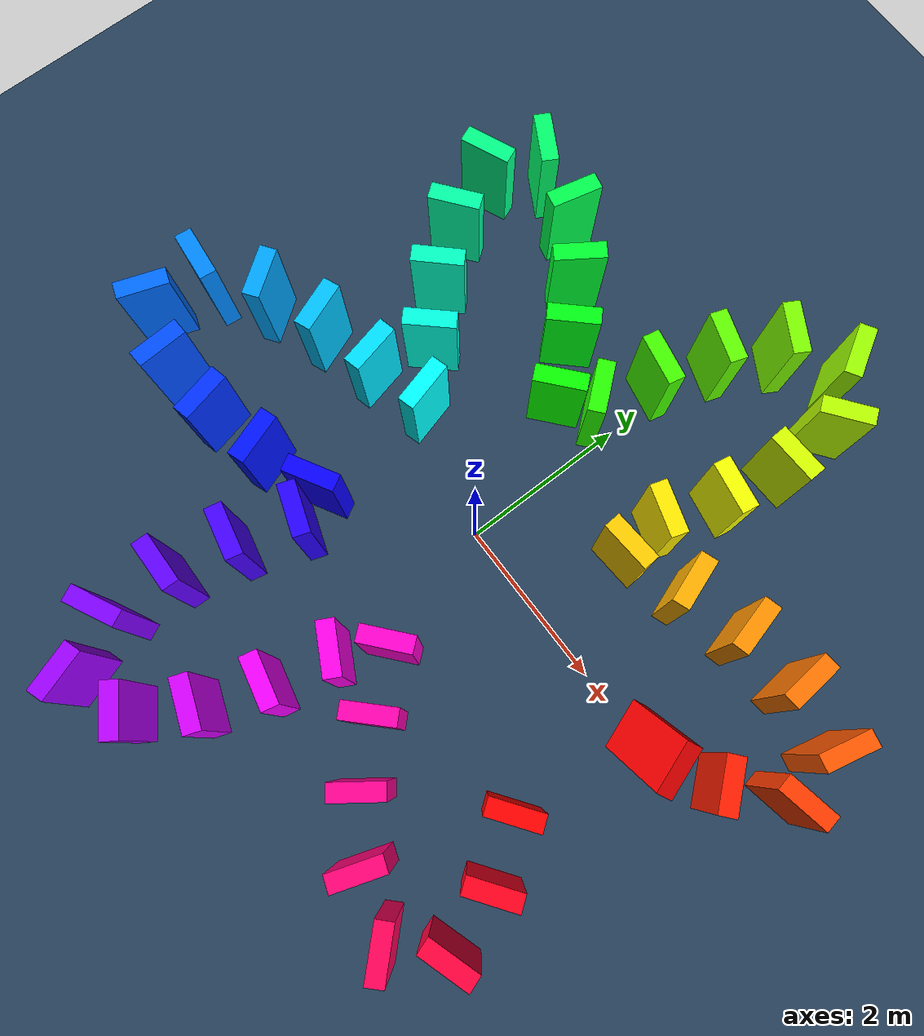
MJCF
<mujoco>
  <visual>
    <headlight diffuse="0.6 0.6 0.6" ambient="0.1 0.1 0.1" specular="0 0 0"/>
    <rgba haze="0.15 0.25 0.35 1"/>
    <global azimuth="120" elevation="-20"/>
  </visual>
  <asset>
    <texture type="skybox" builtin="gradient" rgb1="0.3 0.5 0.7" rgb2="0 0 0" width="512" height="3072"/>
    <texture type="2d" name="groundplane" builtin="checker" mark="edge" rgb1="0.2 0.3 0.4" rgb2="0.1 0.2 0.3" markrgb="0.8 0.8 0.8" width="300" height="300"/>
    <material name="groundplane" texture="groundplane" texuniform="true" texrepeat="5 5" reflectance="0.2"/>
  </asset>
  <worldbody>
    <light pos="0 0 1.5" dir="0 0 -1" directional="true"/>
    <geom name="floor" size="0 0 0.05" type="plane" material="groundplane"/>
    <body name="trigger" pos="3.0000 0.0000 0.5767" euler="0 28.0 23.5">
      <geom type="box" size="0.1000 0.3000 0.6000" rgba="1.000 0.000 0.000 1"/>
      <freejoint/>
    </body>
    <body name="domino_001" pos="3.6868 0.2985 0.6000" euler="0 0.0 40.1">
      <geom type="box" size="0.1000 0.3000 0.6000" rgba="1.000 0.115 0.000 1"/>
      <freejoint/>
    </body>
    <body name="domino_002" pos="4.2556 0.7776 0.6000" euler="0 0.0 100.5">
      <geom type="box" size="0.1000 0.3000 0.6000" rgba="1.000 0.231 0.000 1"/>
      <freejoint/>
    </body>
    <body name="domino_003" pos="4.1359 1.4206 0.6000" euler="0 0.0 167.2">
      <geom type="box" size="0.1000 0.3000 0.6000" rgba="1.000 0.346 0.000 1"/>
      <freejoint/>
    </body>
    <body name="domino_004" pos="3.4124 1.5846 0.6000" euler="0 0.0 -174.6">
      <geom type="box" size="0.1000 0.3000 0.6000" rgba="1.000 0.462 0.000 1"/>
      <freejoint/>
    </body>
    <body name="domino_005" pos="2.6671 1.5136 0.6000" euler="0 0.0 -165.3">
      <geom type="box" size="0.1000 0.3000 0.6000" rgba="1.000 0.577 0.000 1"/>
      <freejoint/>
    </body>
    <body name="domino_006" pos="1.9421 1.3237 0.6000" euler="0 0.0 -160.3">
      <geom type="box" size="0.1000 0.3000 0.6000" rgba="1.000 0.692 0.000 1"/>
      <freejoint/>
    </body>
    <body name="domino_007" pos="1.2360 1.0710 0.6000" euler="0 0.0 93.6">
      <geom type="box" size="0.1000 0.3000 0.6000" rgba="1.000 0.808 0.000 1"/>
      <freejoint/>
    </body>
    <body name="domino_008" pos="1.2029 1.5983 0.6000" euler="0 0.0 72.1">
      <geom type="box" size="0.1000 0.3000 0.6000" rgba="1.000 0.923 0.000 1"/>
      <freejoint/>
    </body>
    <body name="domino_009" pos="1.4330 2.3118 0.6000" euler="0 0.0 79.5">
      <geom type="box" size="0.1000 0.3000 0.6000" rgba="0.962 1.000 0.000 1"/>
      <freejoint/>
    </body>
    <body name="domino_010" pos="1.5690 3.0485 0.6000" euler="0 0.0 91.8">
      <geom type="box" size="0.1000 0.3000 0.6000" rgba="0.846 1.000 0.000 1"/>
      <freejoint/>
    </body>
    <body name="domino_011" pos="1.5456 3.7955 0.6000" euler="0 0.0 127.2">
      <geom type="box" size="0.1000 0.3000 0.6000" rgba="0.731 1.000 0.000 1"/>
      <freejoint/>
    </body>
    <body name="domino_012" pos="1.1199 4.3556 0.6000" euler="0 0.0 -149.4">
      <geom type="box" size="0.1000 0.3000 0.6000" rgba="0.615 1.000 0.000 1"/>
      <freejoint/>
    </body>
    <body name="domino_013" pos="0.5004 3.9897 0.6000" euler="0 0.0 -119.8">
      <geom type="box" size="0.1000 0.3000 0.6000" rgba="0.500 1.000 0.000 1"/>
      <freejoint/>
    </body>
    <body name="domino_014" pos="0.1287 3.3409 0.6000" euler="0 0.0 -108.5">
      <geom type="box" size="0.1000 0.3000 0.6000" rgba="0.385 1.000 0.000 1"/>
      <freejoint/>
    </body>
    <body name="domino_015" pos="-0.1086 2.6301 0.6000" euler="0 0.0 -101.5">
      <geom type="box" size="0.1000 0.3000 0.6000" rgba="0.269 1.000 0.000 1"/>
      <freejoint/>
    </body>
    <body name="domino_016" pos="-0.2577 1.8954 0.6000" euler="0 0.0 -140.2">
      <geom type="box" size="0.1000 0.3000 0.6000" rgba="0.154 1.000 0.000 1"/>
      <freejoint/>
    </body>
    <body name="domino_017" pos="-0.5953 1.6142 0.6000" euler="0 0.0 130.4">
      <geom type="box" size="0.1000 0.3000 0.6000" rgba="0.038 1.000 0.000 1"/>
      <freejoint/>
    </body>
    <body name="domino_018" pos="-1.0815 2.1851 0.6000" euler="0 0.0 136.2">
      <geom type="box" size="0.1000 0.3000 0.6000" rgba="0.000 1.000 0.077 1"/>
      <freejoint/>
    </body>
    <body name="domino_019" pos="-1.6228 2.7034 0.6000" euler="0 0.0 146.0">
      <geom type="box" size="0.1000 0.3000 0.6000" rgba="0.000 1.000 0.192 1"/>
      <freejoint/>
    </body>
    <body name="domino_020" pos="-2.2437 3.1215 0.6000" euler="0 0.0 166.8">
      <geom type="box" size="0.1000 0.3000 0.6000" rgba="0.000 1.000 0.308 1"/>
      <freejoint/>
    </body>
    <body name="domino_021" pos="-2.9625 3.2895 0.6000" euler="0 0.0 -119.2">
      <geom type="box" size="0.1000 0.3000 0.6000" rgba="0.000 1.000 0.423 1"/>
      <freejoint/>
    </body>
    <body name="domino_022" pos="-3.2859 2.7104 0.6000" euler="0 0.0 -67.1">
      <geom type="box" size="0.1000 0.3000 0.6000" rgba="0.000 1.000 0.538 1"/>
      <freejoint/>
    </body>
    <body name="domino_023" pos="-2.9961 2.0237 0.6000" euler="0 0.0 -52.2">
      <geom type="box" size="0.1000 0.3000 0.6000" rgba="0.000 1.000 0.654 1"/>
      <freejoint/>
    </body>
    <body name="domino_024" pos="-2.5368 1.4321 0.6000" euler="0 0.0 -43.8">
      <geom type="box" size="0.1000 0.3000 0.6000" rgba="0.000 1.000 0.769 1"/>
      <freejoint/>
    </body>
    <body name="domino_025" pos="-1.9958 0.9133 0.6000" euler="0 0.0 -42.7">
      <geom type="box" size="0.1000 0.3000 0.6000" rgba="0.000 1.000 0.885 1"/>
      <freejoint/>
    </body>
    <body name="domino_026" pos="-1.4481 0.4085 0.6000" euler="0 0.0 -164.4">
      <geom type="box" size="0.1000 0.3000 0.6000" rgba="0.000 1.000 1.000 1"/>
      <freejoint/>
    </body>
    <body name="domino_027" pos="-2.1449 0.2145 0.6000" euler="0 0.0 -166.6">
      <geom type="box" size="0.1000 0.3000 0.6000" rgba="0.000 0.885 1.000 1"/>
      <freejoint/>
    </body>
    <body name="domino_028" pos="-2.8740 0.0402 0.6000" euler="0 0.0 -158.4">
      <geom type="box" size="0.1000 0.3000 0.6000" rgba="0.000 0.769 1.000 1"/>
      <freejoint/>
    </body>
    <body name="domino_029" pos="-3.5703 -0.2358 0.6000" euler="0 0.0 -144.1">
      <geom type="box" size="0.1000 0.3000 0.6000" rgba="0.000 0.654 1.000 1"/>
      <freejoint/>
    </body>
    <body name="domino_030" pos="-4.1744 -0.6733 0.6000" euler="0 0.0 -95.7">
      <geom type="box" size="0.1000 0.3000 0.6000" rgba="0.000 0.538 1.000 1"/>
      <freejoint/>
    </body>
    <body name="domino_031" pos="-4.2406 -1.3402 0.6000" euler="0 0.0 -18.9">
      <geom type="box" size="0.1000 0.3000 0.6000" rgba="0.000 0.423 1.000 1"/>
      <freejoint/>
    </body>
    <body name="domino_032" pos="-3.5446 -1.5789 0.6000" euler="0 0.0 3.3">
      <geom type="box" size="0.1000 0.3000 0.6000" rgba="0.000 0.308 1.000 1"/>
      <freejoint/>
    </body>
    <body name="domino_033" pos="-2.7974 -1.5364 0.6000" euler="0 0.0 13.3">
      <geom type="box" size="0.1000 0.3000 0.6000" rgba="0.000 0.192 1.000 1"/>
      <freejoint/>
    </body>
    <body name="domino_034" pos="-2.0682 -1.3637 0.6000" euler="0 0.0 19.4">
      <geom type="box" size="0.1000 0.3000 0.6000" rgba="0.000 0.077 1.000 1"/>
      <freejoint/>
    </body>
    <body name="domino_035" pos="-1.3610 -1.1142 0.6000" euler="0 0.0 -60.4">
      <geom type="box" size="0.1000 0.3000 0.6000" rgba="0.038 0.000 1.000 1"/>
      <freejoint/>
    </body>
    <body name="domino_036" pos="-1.1565 -1.4744 0.6000" euler="0 0.0 -108.8">
      <geom type="box" size="0.1000 0.3000 0.6000" rgba="0.154 0.000 1.000 1"/>
      <freejoint/>
    </body>
    <body name="domino_037" pos="-1.3980 -2.1842 0.6000" euler="0 0.0 -102.0">
      <geom type="box" size="0.1000 0.3000 0.6000" rgba="0.269 0.000 1.000 1"/>
      <freejoint/>
    </body>
    <body name="domino_038" pos="-1.5539 -2.9171 0.6000" euler="0 0.0 -91.0">
      <geom type="box" size="0.1000 0.3000 0.6000" rgba="0.385 0.000 1.000 1"/>
      <freejoint/>
    </body>
    <body name="domino_039" pos="-1.5671 -3.6650 0.6000" euler="0 0.0 -63.6">
      <geom type="box" size="0.1000 0.3000 0.6000" rgba="0.500 0.000 1.000 1"/>
      <freejoint/>
    </body>
    <body name="domino_040" pos="-1.2447 -4.3142 0.6000" euler="0 0.0 18.8">
      <geom type="box" size="0.1000 0.3000 0.6000" rgba="0.615 0.000 1.000 1"/>
      <freejoint/>
    </body>
    <body name="domino_041" pos="-0.5867 -4.0899 0.6000" euler="0 0.0 57.2">
      <geom type="box" size="0.1000 0.3000 0.6000" rgba="0.731 0.000 1.000 1"/>
      <freejoint/>
    </body>
    <body name="domino_042" pos="-0.1826 -3.4616 0.6000" euler="0 0.0 70.0">
      <geom type="box" size="0.1000 0.3000 0.6000" rgba="0.846 0.000 1.000 1"/>
      <freejoint/>
    </body>
    <body name="domino_043" pos="0.0742 -2.7579 0.6000" euler="0 0.0 77.6">
      <geom type="box" size="0.1000 0.3000 0.6000" rgba="0.961 0.000 1.000 1"/>
      <freejoint/>
    </body>
    <body name="domino_044" pos="0.2357 -2.0258 0.6000" euler="0 0.0 62.0">
      <geom type="box" size="0.1000 0.3000 0.6000" rgba="1.000 0.000 0.923 1"/>
      <freejoint/>
    </body>
    <body name="domino_045" pos="0.5067 -1.5161 0.6000" euler="0 0.0 -49.6">
      <geom type="box" size="0.1000 0.3000 0.6000" rgba="1.000 0.000 0.808 1"/>
      <freejoint/>
    </body>
    <body name="domino_046" pos="0.9929 -2.0869 0.6000" euler="0 0.0 -45.1">
      <geom type="box" size="0.1000 0.3000 0.6000" rgba="1.000 0.000 0.692 1"/>
      <freejoint/>
    </body>
    <body name="domino_047" pos="1.5221 -2.6176 0.6000" euler="0 0.0 -36.1">
      <geom type="box" size="0.1000 0.3000 0.6000" rgba="1.000 0.000 0.577 1"/>
      <freejoint/>
    </body>
    <body name="domino_048" pos="2.1274 -3.0585 0.6000" euler="0 0.0 -18.8">
      <geom type="box" size="0.1000 0.3000 0.6000" rgba="1.000 0.000 0.462 1"/>
      <freejoint/>
    </body>
    <body name="domino_049" pos="2.8307 -3.2981 0.6000" euler="0 0.0 44.3">
      <geom type="box" size="0.1000 0.3000 0.6000" rgba="1.000 0.000 0.346 1"/>
      <freejoint/>
    </body>
    <body name="domino_050" pos="3.2983 -2.8420 0.6000" euler="0 0.0 108.4">
      <geom type="box" size="0.1000 0.3000 0.6000" rgba="1.000 0.000 0.231 1"/>
      <freejoint/>
    </body>
    <body name="domino_051" pos="3.0641 -2.1372 0.6000" euler="0 0.0 125.9">
      <geom type="box" size="0.1000 0.3000 0.6000" rgba="1.000 0.000 0.115 1"/>
      <freejoint/>
    </body>
    <body name="domino_052" pos="2.6250 -1.5306 0.6000" euler="0 0.0 125.9">
      <geom type="box" size="0.1000 0.3000 0.6000" rgba="1.000 0.000 0.000 1"/>
      <freejoint/>
    </body>
  </worldbody>
</mujoco>
